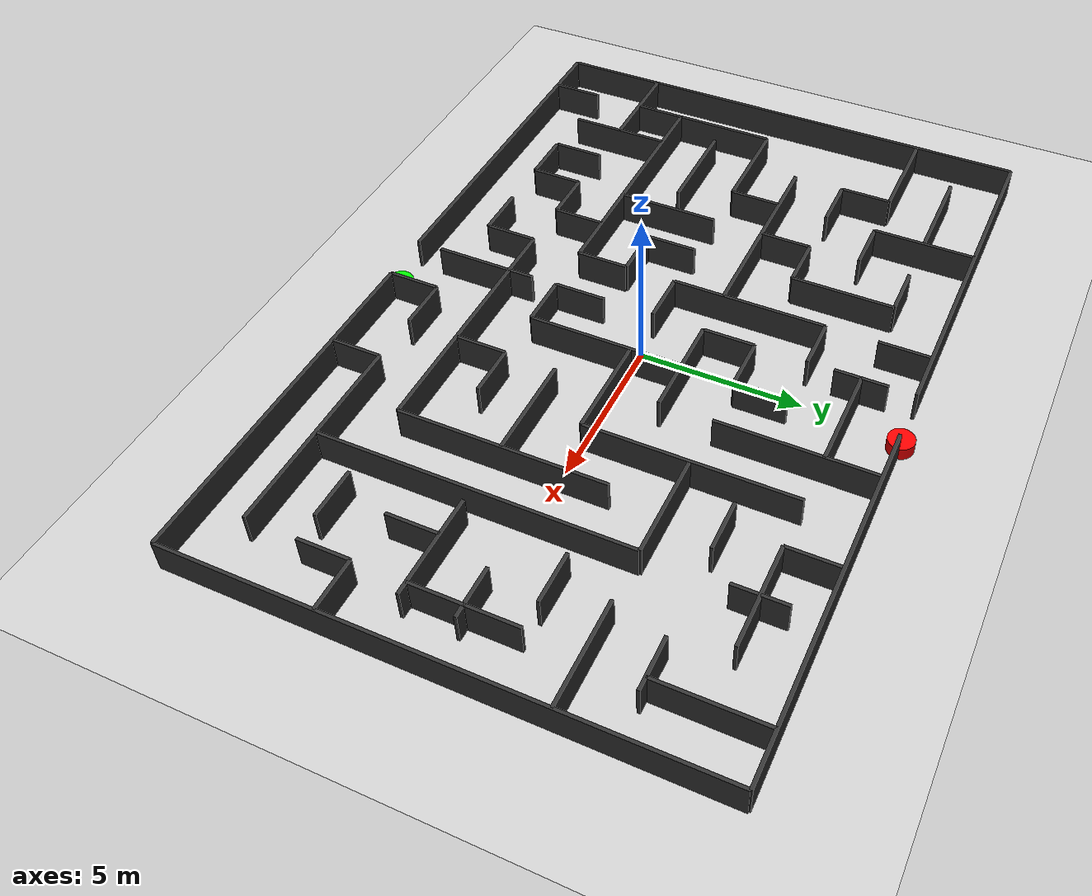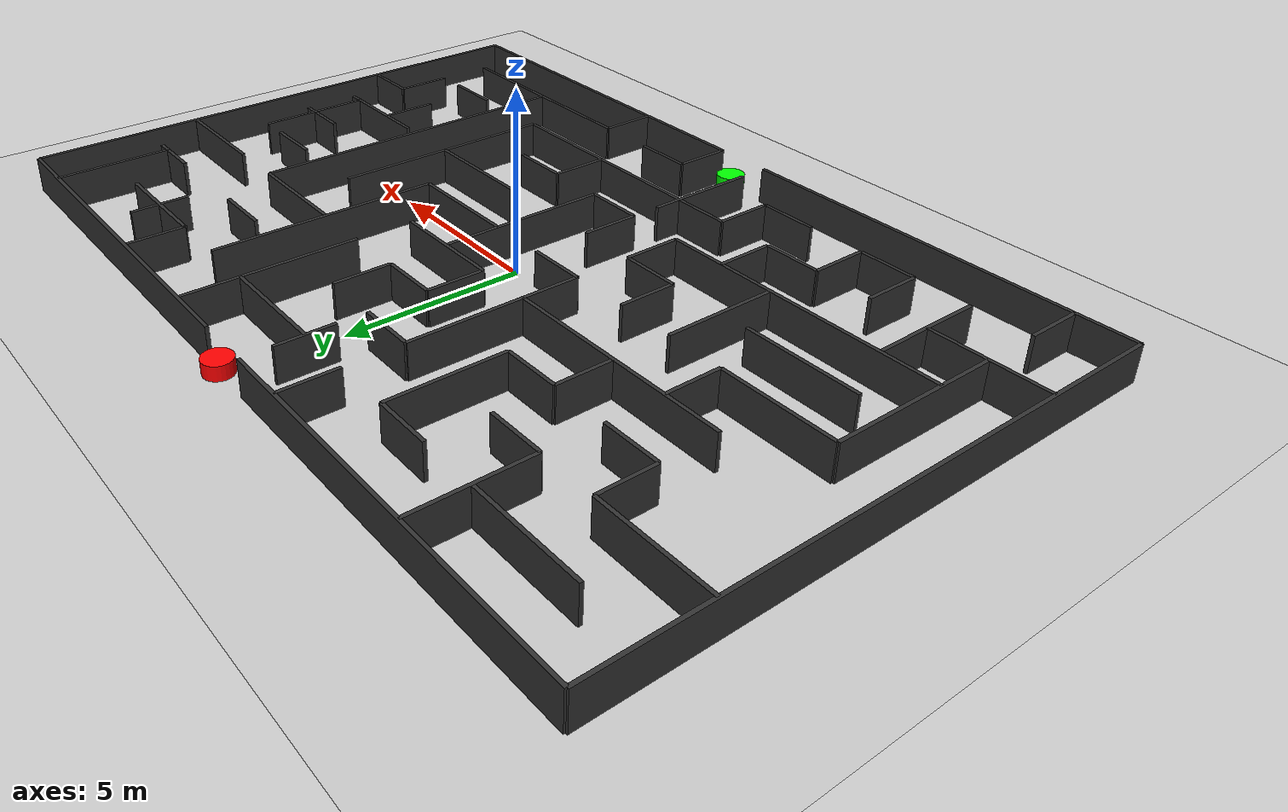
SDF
<?xml version="1.0" ?>
<sdf version="1.8">
    <world name="maze_world_15x10">
        <!-- Physics -->
        <physics name="1ms" type="ignored">
            <max_step_size>0.001</max_step_size>
            <real_time_factor>1.0</real_time_factor>
        </physics>

        <!-- Plugins -->
        <plugin filename="ignition-gazebo-physics-system" name="ignition::gazebo::systems::Physics">
        </plugin>
        <plugin filename="ignition-gazebo-user-commands-system" name="ignition::gazebo::systems::UserCommands">
        </plugin>
        <plugin filename="ignition-gazebo-scene-broadcaster-system" name="ignition::gazebo::systems::SceneBroadcaster">
        </plugin>
         <plugin filename="ignition-gazebo-sensors-system" name="ignition::gazebo::systems::Sensors">
            <render_engine>ogre</render_engine>
        </plugin>

        <!-- Lighting -->
        <light type="directional" name="sun">
            <cast_shadows>true</cast_shadows>
            <pose>0 0 10 0 0 0</pose>
            <diffuse>0.8 0.8 0.8 1</diffuse>
            <specular>0.2 0.2 0.2 1</specular>
            <attenuation>
                <range>1000</range>
                <constant>0.9</constant>
                <linear>0.01</linear>
                <quadratic>0.001</quadratic>
            </attenuation>
            <direction>-0.5 0.1 -0.9</direction>
        </light>

        <!-- Ground Plane -->
        <model name="ground_plane">
            <static>true</static>
            <link name="link">
                <collision name="collision">
                    <geometry>
                        <plane>
                            <normal>0 0 1</normal>
                        </plane>
                    </geometry>
                </collision>
                <visual name="visual">
                    <geometry>
                        <plane>
                            <normal>0 0 1</normal>
                            <size>50 50</size>
                        </plane>
                    </geometry>
                    <material>
                        <ambient>0.8 0.8 0.8 1</ambient>
                        <diffuse>0.8 0.8 0.8 1</diffuse>
                        <specular>0.8 0.8 0.8 1</specular>
                    </material>
                </visual>
            </link>
        </model>

        <!-- SVG: 244x164 (15 genişlik × 10 yükseklik) → Gazebo: 24.4m × 16.4m -->
        <!-- Merkez: SVG (122, 82) → Gazebo (0, 0) -->
        <!-- Ölçek: 1 SVG birimi = 0.1m -->

        <!-- HORIZONTAL WALLS (Yatay Duvarlar) -->

        <!-- Line 1: x1="2" y1="2" x2="114" y2="2" -->
        <model name="wall_h1">
            <static>true</static>
            <pose>-6.4 8 0.5 0 0 0</pose>
            <link name="link">
                <collision name="collision">
                    <geometry>
                        <box>
                            <size>11.2 0.1 1</size>
                        </box>
                    </geometry>
                </collision>
                <visual name="visual">
                    <geometry>
                        <box>
                            <size>11.2 0.1 1</size>
                        </box>
                    </geometry>
                    <material>
                        <ambient>0.2 0.2 0.2 1</ambient>
                        <diffuse>0.2 0.2 0.2 1</diffuse>
                    </material>
                </visual>
            </link>
        </model>

        <!-- Line 2: x1="130" y1="2" x2="242" y2="2" -->
        <model name="wall_h2">
            <static>true</static>
            <pose>6.4 8 0.5 0 0 0</pose>
            <link name="link">
                <collision name="collision">
                    <geometry>
                        <box>
                            <size>11.2 0.1 1</size>
                        </box>
                    </geometry>
                </collision>
                <visual name="visual">
                    <geometry>
                        <box>
                            <size>11.2 0.1 1</size>
                        </box>
                    </geometry>
                    <material>
                        <ambient>0.2 0.2 0.2 1</ambient>
                        <diffuse>0.2 0.2 0.2 1</diffuse>
                    </material>
                </visual>
            </link>
        </model>

        <!-- Line 3: x1="18" y1="18" x2="50" y2="18" -->
        <model name="wall_h3">
            <static>true</static>
            <pose>-8.8 6.4 0.5 0 0 0</pose>
            <link name="link">
                <collision name="collision">
                    <geometry>
                        <box>
                            <size>3.2 0.1 1</size>
                        </box>
                    </geometry>
                </collision>
                <visual name="visual">
                    <geometry>
                        <box>
                            <size>3.2 0.1 1</size>
                        </box>
                    </geometry>
                    <material>
                        <ambient>0.2 0.2 0.2 1</ambient>
                        <diffuse>0.2 0.2 0.2 1</diffuse>
                    </material>
                </visual>
            </link>
        </model>

        <!-- Line 4: x1="66" y1="18" x2="82" y2="18" -->
        <model name="wall_h4">
            <static>true</static>
            <pose>-4.8 6.4 0.5 0 0 0</pose>
            <link name="link">
                <collision name="collision">
                    <geometry>
                        <box>
                            <size>1.6 0.1 1</size>
                        </box>
                    </geometry>
                </collision>
                <visual name="visual">
                    <geometry>
                        <box>
                            <size>1.6 0.1 1</size>
                        </box>
                    </geometry>
                    <material>
                        <ambient>0.2 0.2 0.2 1</ambient>
                        <diffuse>0.2 0.2 0.2 1</diffuse>
                    </material>
                </visual>
            </link>
        </model>

        <!-- Line 5: x1="114" y1="18" x2="146" y2="18" -->
        <model name="wall_h5">
            <static>true</static>
            <pose>0.8 6.4 0.5 0 0 0</pose>
            <link name="link">
                <collision name="collision">
                    <geometry>
                        <box>
                            <size>3.2 0.1 1</size>
                        </box>
                    </geometry>
                </collision>
                <visual name="visual">
                    <geometry>
                        <box>
                            <size>3.2 0.1 1</size>
                        </box>
                    </geometry>
                    <material>
                        <ambient>0.2 0.2 0.2 1</ambient>
                        <diffuse>0.2 0.2 0.2 1</diffuse>
                    </material>
                </visual>
            </link>
        </model>

        <!-- Line 6: x1="178" y1="18" x2="210" y2="18" -->
        <model name="wall_h6">
            <static>true</static>
            <pose>7.2 6.4 0.5 0 0 0</pose>
            <link name="link">
                <collision name="collision">
                    <geometry>
                        <box>
                            <size>3.2 0.1 1</size>
                        </box>
                    </geometry>
                </collision>
                <visual name="visual">
                    <geometry>
                        <box>
                            <size>3.2 0.1 1</size>
                        </box>
                    </geometry>
                    <material>
                        <ambient>0.2 0.2 0.2 1</ambient>
                        <diffuse>0.2 0.2 0.2 1</diffuse>
                    </material>
                </visual>
            </link>
        </model>

        <!-- Line 7: x1="2" y1="34" x2="34" y2="34" -->
        <model name="wall_h7">
            <static>true</static>
            <pose>-10.4 4.8 0.5 0 0 0</pose>
            <link name="link">
                <collision name="collision">
                    <geometry>
                        <box>
                            <size>3.2 0.1 1</size>
                        </box>
                    </geometry>
                </collision>
                <visual name="visual">
                    <geometry>
                        <box>
                            <size>3.2 0.1 1</size>
                        </box>
                    </geometry>
                    <material>
                        <ambient>0.2 0.2 0.2 1</ambient>
                        <diffuse>0.2 0.2 0.2 1</diffuse>
                    </material>
                </visual>
            </link>
        </model>

        <!-- Line 8: x1="50" y1="34" x2="66" y2="34" -->
        <model name="wall_h8">
            <static>true</static>
            <pose>-6.4 4.8 0.5 0 0 0</pose>
            <link name="link">
                <collision name="collision">
                    <geometry>
                        <box>
                            <size>1.6 0.1 1</size>
                        </box>
                    </geometry>
                </collision>
                <visual name="visual">
                    <geometry>
                        <box>
                            <size>1.6 0.1 1</size>
                        </box>
                    </geometry>
                    <material>
                        <ambient>0.2 0.2 0.2 1</ambient>
                        <diffuse>0.2 0.2 0.2 1</diffuse>
                    </material>
                </visual>
            </link>
        </model>

        <!-- Line 9: x1="98" y1="34" x2="114" y2="34" -->
        <model name="wall_h9">
            <static>true</static>
            <pose>-1.6 4.8 0.5 0 0 0</pose>
            <link name="link">
                <collision name="collision">
                    <geometry>
                        <box>
                            <size>1.6 0.1 1</size>
                        </box>
                    </geometry>
                </collision>
                <visual name="visual">
                    <geometry>
                        <box>
                            <size>1.6 0.1 1</size>
                        </box>
                    </geometry>
                    <material>
                        <ambient>0.2 0.2 0.2 1</ambient>
                        <diffuse>0.2 0.2 0.2 1</diffuse>
                    </material>
                </visual>
            </link>
        </model>

        <!-- Line 10: x1="162" y1="34" x2="178" y2="34" -->
        <model name="wall_h10">
            <static>true</static>
            <pose>5.6 4.8 0.5 0 0 0</pose>
            <link name="link">
                <collision name="collision">
                    <geometry>
                        <box>
                            <size>1.6 0.1 1</size>
                        </box>
                    </geometry>
                </collision>
                <visual name="visual">
                    <geometry>
                        <box>
                            <size>1.6 0.1 1</size>
                        </box>
                    </geometry>
                    <material>
                        <ambient>0.2 0.2 0.2 1</ambient>
                        <diffuse>0.2 0.2 0.2 1</diffuse>
                    </material>
                </visual>
            </link>
        </model>

        <!-- Line 11: x1="210" y1="34" x2="226" y2="34" -->
        <model name="wall_h11">
            <static>true</static>
            <pose>10 4.8 0.5 0 0 0</pose>
            <link name="link">
                <collision name="collision">
                    <geometry>
                        <box>
                            <size>1.6 0.1 1</size>
                        </box>
                    </geometry>
                </collision>
                <visual name="visual">
                    <geometry>
                        <box>
                            <size>1.6 0.1 1</size>
                        </box>
                    </geometry>
                    <material>
                        <ambient>0.2 0.2 0.2 1</ambient>
                        <diffuse>0.2 0.2 0.2 1</diffuse>
                    </material>
                </visual>
            </link>
        </model>

        <!-- Line 12: x1="34" y1="50" x2="50" y2="50" -->
        <model name="wall_h12">
            <static>true</static>
            <pose>-8 3.2 0.5 0 0 0</pose>
            <link name="link">
                <collision name="collision">
                    <geometry>
                        <box>
                            <size>1.6 0.1 1</size>
                        </box>
                    </geometry>
                </collision>
                <visual name="visual">
                    <geometry>
                        <box>
                            <size>1.6 0.1 1</size>
                        </box>
                    </geometry>
                    <material>
                        <ambient>0.2 0.2 0.2 1</ambient>
                        <diffuse>0.2 0.2 0.2 1</diffuse>
                    </material>
                </visual>
            </link>
        </model>

        <!-- Line 13: x1="66" y1="50" x2="82" y2="50" -->
        <model name="wall_h13">
            <static>true</static>
            <pose>-4.8 3.2 0.5 0 0 0</pose>
            <link name="link">
                <collision name="collision">
                    <geometry>
                        <box>
                            <size>1.6 0.1 1</size>
                        </box>
                    </geometry>
                </collision>
                <visual name="visual">
                    <geometry>
                        <box>
                            <size>1.6 0.1 1</size>
                        </box>
                    </geometry>
                    <material>
                        <ambient>0.2 0.2 0.2 1</ambient>
                        <diffuse>0.2 0.2 0.2 1</diffuse>
                    </material>
                </visual>
            </link>
        </model>

        <!-- Line 14: x1="114" y1="50" x2="130" y2="50" -->
        <model name="wall_h14">
            <static>true</static>
            <pose>0 3.2 0.5 0 0 0</pose>
            <link name="link">
                <collision name="collision">
                    <geometry>
                        <box>
                            <size>1.6 0.1 1</size>
                        </box>
                    </geometry>
                </collision>
                <visual name="visual">
                    <geometry>
                        <box>
                            <size>1.6 0.1 1</size>
                        </box>
                    </geometry>
                    <material>
                        <ambient>0.2 0.2 0.2 1</ambient>
                        <diffuse>0.2 0.2 0.2 1</diffuse>
                    </material>
                </visual>
            </link>
        </model>

        <!-- Line 15: x1="162" y1="50" x2="194" y2="50" -->
        <model name="wall_h15">
            <static>true</static>
            <pose>5.6 3.2 0.5 0 0 0</pose>
            <link name="link">
                <collision name="collision">
                    <geometry>
                        <box>
                            <size>3.2 0.1 1</size>
                        </box>
                    </geometry>
                </collision>
                <visual name="visual">
                    <geometry>
                        <box>
                            <size>3.2 0.1 1</size>
                        </box>
                    </geometry>
                    <material>
                        <ambient>0.2 0.2 0.2 1</ambient>
                        <diffuse>0.2 0.2 0.2 1</diffuse>
                    </material>
                </visual>
            </link>
        </model>

        <!-- Line 16: x1="210" y1="50" x2="242" y2="50" -->
        <model name="wall_h16">
            <static>true</static>
            <pose>10.4 3.2 0.5 0 0 0</pose>
            <link name="link">
                <collision name="collision">
                    <geometry>
                        <box>
                            <size>3.2 0.1 1</size>
                        </box>
                    </geometry>
                </collision>
                <visual name="visual">
                    <geometry>
                        <box>
                            <size>3.2 0.1 1</size>
                        </box>
                    </geometry>
                    <material>
                        <ambient>0.2 0.2 0.2 1</ambient>
                        <diffuse>0.2 0.2 0.2 1</diffuse>
                    </material>
                </visual>
            </link>
        </model>

        <!-- Line 17: x1="34" y1="66" x2="98" y2="66" -->
        <model name="wall_h17">
            <static>true</static>
            <pose>-5.6 1.6 0.5 0 0 0</pose>
            <link name="link">
                <collision name="collision">
                    <geometry>
                        <box>
                            <size>6.4 0.1 1</size>
                        </box>
                    </geometry>
                </collision>
                <visual name="visual">
                    <geometry>
                        <box>
                            <size>6.4 0.1 1</size>
                        </box>
                    </geometry>
                    <material>
                        <ambient>0.2 0.2 0.2 1</ambient>
                        <diffuse>0.2 0.2 0.2 1</diffuse>
                    </material>
                </visual>
            </link>
        </model>

        <!-- Line 18: x1="114" y1="66" x2="146" y2="66" -->
        <model name="wall_h18">
            <static>true</static>
            <pose>0.8 1.6 0.5 0 0 0</pose>
            <link name="link">
                <collision name="collision">
                    <geometry>
                        <box>
                            <size>3.2 0.1 1</size>
                        </box>
                    </geometry>
                </collision>
                <visual name="visual">
                    <geometry>
                        <box>
                            <size>3.2 0.1 1</size>
                        </box>
                    </geometry>
                    <material>
                        <ambient>0.2 0.2 0.2 1</ambient>
                        <diffuse>0.2 0.2 0.2 1</diffuse>
                    </material>
                </visual>
            </link>
        </model>

        <!-- Line 19: x1="194" y1="66" x2="210" y2="66" -->
        <model name="wall_h19">
            <static>true</static>
            <pose>8.8 1.6 0.5 0 0 0</pose>
            <link name="link">
                <collision name="collision">
                    <geometry>
                        <box>
                            <size>1.6 0.1 1</size>
                        </box>
                    </geometry>
                </collision>
                <visual name="visual">
                    <geometry>
                        <box>
                            <size>1.6 0.1 1</size>
                        </box>
                    </geometry>
                    <material>
                        <ambient>0.2 0.2 0.2 1</ambient>
                        <diffuse>0.2 0.2 0.2 1</diffuse>
                    </material>
                </visual>
            </link>
        </model>

        <!-- Line 20: x1="18" y1="82" x2="50" y2="82" -->
        <model name="wall_h20">
            <static>true</static>
            <pose>-8.8 0 0.5 0 0 0</pose>
            <link name="link">
                <collision name="collision">
                    <geometry>
                        <box>
                            <size>3.2 0.1 1</size>
                        </box>
                    </geometry>
                </collision>
                <visual name="visual">
                    <geometry>
                        <box>
                            <size>3.2 0.1 1</size>
                        </box>
                    </geometry>
                    <material>
                        <ambient>0.2 0.2 0.2 1</ambient>
                        <diffuse>0.2 0.2 0.2 1</diffuse>
                    </material>
                </visual>
            </link>
        </model>

        <!-- Line 21: x1="98" y1="82" x2="114" y2="82" -->
        <model name="wall_h21">
            <static>true</static>
            <pose>-1.6 0 0.5 0 0 0</pose>
            <link name="link">
                <collision name="collision">
                    <geometry>
                        <box>
                            <size>1.6 0.1 1</size>
                        </box>
                    </geometry>
                </collision>
                <visual name="visual">
                    <geometry>
                        <box>
                            <size>1.6 0.1 1</size>
                        </box>
                    </geometry>
                    <material>
                        <ambient>0.2 0.2 0.2 1</ambient>
                        <diffuse>0.2 0.2 0.2 1</diffuse>
                    </material>
                </visual>
            </link>
        </model>

        <!-- Line 22: x1="130" y1="82" x2="162" y2="82" -->
        <model name="wall_h22">
            <static>true</static>
            <pose>2.4 0 0.5 0 0 0</pose>
            <link name="link">
                <collision name="collision">
                    <geometry>
                        <box>
                            <size>3.2 0.1 1</size>
                        </box>
                    </geometry>
                </collision>
                <visual name="visual">
                    <geometry>
                        <box>
                            <size>3.2 0.1 1</size>
                        </box>
                    </geometry>
                    <material>
                        <ambient>0.2 0.2 0.2 1</ambient>
                        <diffuse>0.2 0.2 0.2 1</diffuse>
                    </material>
                </visual>
            </link>
        </model>

        <!-- Line 23: x1="210" y1="82" x2="226" y2="82" -->
        <model name="wall_h23">
            <static>true</static>
            <pose>10 0 0.5 0 0 0</pose>
            <link name="link">
                <collision name="collision">
                    <geometry>
                        <box>
                            <size>1.6 0.1 1</size>
                        </box>
                    </geometry>
                </collision>
                <visual name="visual">
                    <geometry>
                        <box>
                            <size>1.6 0.1 1</size>
                        </box>
                    </geometry>
                    <material>
                        <ambient>0.2 0.2 0.2 1</ambient>
                        <diffuse>0.2 0.2 0.2 1</diffuse>
                    </material>
                </visual>
            </link>
        </model>

        <!-- Line 24: x1="34" y1="98" x2="66" y2="98" -->
        <model name="wall_h24">
            <static>true</static>
            <pose>-8 -1.6 0.5 0 0 0</pose>
            <link name="link">
                <collision name="collision">
                    <geometry>
                        <box>
                            <size>3.2 0.1 1</size>
                        </box>
                    </geometry>
                </collision>
                <visual name="visual">
                    <geometry>
                        <box>
                            <size>3.2 0.1 1</size>
                        </box>
                    </geometry>
                    <material>
                        <ambient>0.2 0.2 0.2 1</ambient>
                        <diffuse>0.2 0.2 0.2 1</diffuse>
                    </material>
                </visual>
            </link>
        </model>

        <!-- Line 25: x1="82" y1="98" x2="98" y2="98" -->
        <model name="wall_h25">
            <static>true</static>
            <pose>-3.2 -1.6 0.5 0 0 0</pose>
            <link name="link">
                <collision name="collision">
                    <geometry>
                        <box>
                            <size>1.6 0.1 1</size>
                        </box>
                    </geometry>
                </collision>
                <visual name="visual">
                    <geometry>
                        <box>
                            <size>1.6 0.1 1</size>
                        </box>
                    </geometry>
                    <material>
                        <ambient>0.2 0.2 0.2 1</ambient>
                        <diffuse>0.2 0.2 0.2 1</diffuse>
                    </material>
                </visual>
            </link>
        </model>

        <!-- Line 26: x1="146" y1="98" x2="178" y2="98" -->
        <model name="wall_h26">
            <static>true</static>
            <pose>4 -1.6 0.5 0 0 0</pose>
            <link name="link">
                <collision name="collision">
                    <geometry>
                        <box>
                            <size>3.2 0.1 1</size>
                        </box>
                    </geometry>
                </collision>
                <visual name="visual">
                    <geometry>
                        <box>
                            <size>3.2 0.1 1</size>
                        </box>
                    </geometry>
                    <material>
                        <ambient>0.2 0.2 0.2 1</ambient>
                        <diffuse>0.2 0.2 0.2 1</diffuse>
                    </material>
                </visual>
            </link>
        </model>

        <!-- Line 27: x1="194" y1="98" x2="226" y2="98" -->
        <model name="wall_h27">
            <static>true</static>
            <pose>9.2 -1.6 0.5 0 0 0</pose>
            <link name="link">
                <collision name="collision">
                    <geometry>
                        <box>
                            <size>3.2 0.1 1</size>
                        </box>
                    </geometry>
                </collision>
                <visual name="visual">
                    <geometry>
                        <box>
                            <size>3.2 0.1 1</size>
                        </box>
                    </geometry>
                    <material>
                        <ambient>0.2 0.2 0.2 1</ambient>
                        <diffuse>0.2 0.2 0.2 1</diffuse>
                    </material>
                </visual>
            </link>
        </model>

        <!-- Line 28: x1="18" y1="114" x2="98" y2="114" -->
        <model name="wall_h28">
            <static>true</static>
            <pose>-6.4 -3.2 0.5 0 0 0</pose>
            <link name="link">
                <collision name="collision">
                    <geometry>
                        <box>
                            <size>8 0.1 1</size>
                        </box>
                    </geometry>
                </collision>
                <visual name="visual">
                    <geometry>
                        <box>
                            <size>8 0.1 1</size>
                        </box>
                    </geometry>
                    <material>
                        <ambient>0.2 0.2 0.2 1</ambient>
                        <diffuse>0.2 0.2 0.2 1</diffuse>
                    </material>
                </visual>
            </link>
        </model>

        <!-- Line 29: x1="114" y1="114" x2="130" y2="114" -->
        <model name="wall_h29">
            <static>true</static>
            <pose>0 -3.2 0.5 0 0 0</pose>
            <link name="link">
                <collision name="collision">
                    <geometry>
                        <box>
                            <size>1.6 0.1 1</size>
                        </box>
                    </geometry>
                </collision>
                <visual name="visual">
                    <geometry>
                        <box>
                            <size>1.6 0.1 1</size>
                        </box>
                    </geometry>
                    <material>
                        <ambient>0.2 0.2 0.2 1</ambient>
                        <diffuse>0.2 0.2 0.2 1</diffuse>
                    </material>
                </visual>
            </link>
        </model>

        <!-- Line 30: x1="146" y1="114" x2="162" y2="114" -->
        <model name="wall_h30">
            <static>true</static>
            <pose>3.2 -3.2 0.5 0 0 0</pose>
            <link name="link">
                <collision name="collision">
                    <geometry>
                        <box>
                            <size>1.6 0.1 1</size>
                        </box>
                    </geometry>
                </collision>
                <visual name="visual">
                    <geometry>
                        <box>
                            <size>1.6 0.1 1</size>
                        </box>
                    </geometry>
                    <material>
                        <ambient>0.2 0.2 0.2 1</ambient>
                        <diffuse>0.2 0.2 0.2 1</diffuse>
                    </material>
                </visual>
            </link>
        </model>

        <!-- Line 31: x1="226" y1="114" x2="242" y2="114" -->
        <model name="wall_h31">
            <static>true</static>
            <pose>11.2 -3.2 0.5 0 0 0</pose>
            <link name="link">
                <collision name="collision">
                    <geometry>
                        <box>
                            <size>1.6 0.1 1</size>
                        </box>
                    </geometry>
                </collision>
                <visual name="visual">
                    <geometry>
                        <box>
                            <size>1.6 0.1 1</size>
                        </box>
                    </geometry>
                    <material>
                        <ambient>0.2 0.2 0.2 1</ambient>
                        <diffuse>0.2 0.2 0.2 1</diffuse>
                    </material>
                </visual>
            </link>
        </model>

        <!-- Line 32: x1="2" y1="130" x2="34" y2="130" -->
        <model name="wall_h32">
            <static>true</static>
            <pose>-10.4 -4.8 0.5 0 0 0</pose>
            <link name="link">
                <collision name="collision">
                    <geometry>
                        <box>
                            <size>3.2 0.1 1</size>
                        </box>
                    </geometry>
                </collision>
                <visual name="visual">
                    <geometry>
                        <box>
                            <size>3.2 0.1 1</size>
                        </box>
                    </geometry>
                    <material>
                        <ambient>0.2 0.2 0.2 1</ambient>
                        <diffuse>0.2 0.2 0.2 1</diffuse>
                    </material>
                </visual>
            </link>
        </model>

        <!-- Line 33: x1="66" y1="130" x2="82" y2="130" -->
        <model name="wall_h33">
            <static>true</static>
            <pose>-4.8 -4.8 0.5 0 0 0</pose>
            <link name="link">
                <collision name="collision">
                    <geometry>
                        <box>
                            <size>1.6 0.1 1</size>
                        </box>
                    </geometry>
                </collision>
                <visual name="visual">
                    <geometry>
                        <box>
                            <size>1.6 0.1 1</size>
                        </box>
                    </geometry>
                    <material>
                        <ambient>0.2 0.2 0.2 1</ambient>
                        <diffuse>0.2 0.2 0.2 1</diffuse>
                    </material>
                </visual>
            </link>
        </model>

        <!-- Line 34: x1="98" y1="130" x2="178" y2="130" -->
        <model name="wall_h34">
            <static>true</static>
            <pose>1.6 -4.8 0.5 0 0 0</pose>
            <link name="link">
                <collision name="collision">
                    <geometry>
                        <box>
                            <size>8 0.1 1</size>
                        </box>
                    </geometry>
                </collision>
                <visual name="visual">
                    <geometry>
                        <box>
                            <size>8 0.1 1</size>
                        </box>
                    </geometry>
                    <material>
                        <ambient>0.2 0.2 0.2 1</ambient>
                        <diffuse>0.2 0.2 0.2 1</diffuse>
                    </material>
                </visual>
            </link>
        </model>

        <!-- Line 35: x1="194" y1="130" x2="210" y2="130" -->
        <model name="wall_h35">
            <static>true</static>
            <pose>8.8 -4.8 0.5 0 0 0</pose>
            <link name="link">
                <collision name="collision">
                    <geometry>
                        <box>
                            <size>1.6 0.1 1</size>
                        </box>
                    </geometry>
                </collision>
                <visual name="visual">
                    <geometry>
                        <box>
                            <size>1.6 0.1 1</size>
                        </box>
                    </geometry>
                    <material>
                        <ambient>0.2 0.2 0.2 1</ambient>
                        <diffuse>0.2 0.2 0.2 1</diffuse>
                    </material>
                </visual>
            </link>
        </model>

        <!-- Line 36: x1="50" y1="146" x2="66" y2="146" -->
        <model name="wall_h36">
            <static>true</static>
            <pose>-6.4 -6.4 0.5 0 0 0</pose>
            <link name="link">
                <collision name="collision">
                    <geometry>
                        <box>
                            <size>1.6 0.1 1</size>
                        </box>
                    </geometry>
                </collision>
                <visual name="visual">
                    <geometry>
                        <box>
                            <size>1.6 0.1 1</size>
                        </box>
                    </geometry>
                    <material>
                        <ambient>0.2 0.2 0.2 1</ambient>
                        <diffuse>0.2 0.2 0.2 1</diffuse>
                    </material>
                </visual>
            </link>
        </model>

        <!-- Line 37: x1="82" y1="146" x2="98" y2="146" -->
        <model name="wall_h37">
            <static>true</static>
            <pose>-3.2 -6.4 0.5 0 0 0</pose>
            <link name="link">
                <collision name="collision">
                    <geometry>
                        <box>
                            <size>1.6 0.1 1</size>
                        </box>
                    </geometry>
                </collision>
                <visual name="visual">
                    <geometry>
                        <box>
                            <size>1.6 0.1 1</size>
                        </box>
                    </geometry>
                    <material>
                        <ambient>0.2 0.2 0.2 1</ambient>
                        <diffuse>0.2 0.2 0.2 1</diffuse>
                    </material>
                </visual>
            </link>
        </model>

        <!-- Line 38: x1="130" y1="146" x2="146" y2="146" -->
        <model name="wall_h38">
            <static>true</static>
            <pose>1.6 -6.4 0.5 0 0 0</pose>
            <link name="link">
                <collision name="collision">
                    <geometry>
                        <box>
                            <size>1.6 0.1 1</size>
                        </box>
                    </geometry>
                </collision>
                <visual name="visual">
                    <geometry>
                        <box>
                            <size>1.6 0.1 1</size>
                        </box>
                    </geometry>
                    <material>
                        <ambient>0.2 0.2 0.2 1</ambient>
                        <diffuse>0.2 0.2 0.2 1</diffuse>
                    </material>
                </visual>
            </link>
        </model>

        <!-- Line 39: x1="162" y1="146" x2="226" y2="146" -->
        <model name="wall_h39">
            <static>true</static>
            <pose>7.2 -6.4 0.5 0 0 0</pose>
            <link name="link">
                <collision name="collision">
                    <geometry>
                        <box>
                            <size>6.4 0.1 1</size>
                        </box>
                    </geometry>
                </collision>
                <visual name="visual">
                    <geometry>
                        <box>
                            <size>6.4 0.1 1</size>
                        </box>
                    </geometry>
                    <material>
                        <ambient>0.2 0.2 0.2 1</ambient>
                        <diffuse>0.2 0.2 0.2 1</diffuse>
                    </material>
                </visual>
            </link>
        </model>

        <!-- Line 40: x1="2" y1="162" x2="114" y2="162" -->
        <model name="wall_h40">
            <static>true</static>
            <pose>-6.4 -8 0.5 0 0 0</pose>
            <link name="link">
                <collision name="collision">
                    <geometry>
                        <box>
                            <size>11.2 0.1 1</size>
                        </box>
                    </geometry>
                </collision>
                <visual name="visual">
                    <geometry>
                        <box>
                            <size>11.2 0.1 1</size>
                        </box>
                    </geometry>
                    <material>
                        <ambient>0.2 0.2 0.2 1</ambient>
                        <diffuse>0.2 0.2 0.2 1</diffuse>
                    </material>
                </visual>
            </link>
        </model>

        <!-- Line 41: x1="130" y1="162" x2="242" y2="162" -->
        <model name="wall_h41">
            <static>true</static>
            <pose>6.4 -8 0.5 0 0 0</pose>
            <link name="link">
                <collision name="collision">
                    <geometry>
                        <box>
                            <size>11.2 0.1 1</size>
                        </box>
                    </geometry>
                </collision>
                <visual name="visual">
                    <geometry>
                        <box>
                            <size>11.2 0.1 1</size>
                        </box>
                    </geometry>
                    <material>
                        <ambient>0.2 0.2 0.2 1</ambient>
                        <diffuse>0.2 0.2 0.2 1</diffuse>
                    </material>
                </visual>
            </link>
        </model>

        <!-- VERTICAL WALLS (Dikey Duvarlar) -->

        <!-- Line 42: x1="2" y1="2" x2="2" y2="162" -->
        <model name="wall_v1">
            <static>true</static>
            <pose>-12 0 0.5 0 0 0</pose>
            <link name="link">
                <collision name="collision">
                    <geometry>
                        <box>
                            <size>0.1 16 1</size>
                        </box>
                    </geometry>
                </collision>
                <visual name="visual">
                    <geometry>
                        <box>
                            <size>0.1 16 1</size>
                        </box>
                    </geometry>
                    <material>
                        <ambient>0.2 0.2 0.2 1</ambient>
                        <diffuse>0.2 0.2 0.2 1</diffuse>
                    </material>
                </visual>
            </link>
        </model>

        <!-- Line 43: x1="18" y1="50" x2="18" y2="98" -->
        <model name="wall_v2">
            <static>true</static>
            <pose>-10.4 -2.4 0.5 0 0 0</pose>
            <link name="link">
                <collision name="collision">
                    <geometry>
                        <box>
                            <size>0.1 4.8 1</size>
                        </box>
                    </geometry>
                </collision>
                <visual name="visual">
                    <geometry>
                        <box>
                            <size>0.1 4.8 1</size>
                        </box>
                    </geometry>
                    <material>
                        <ambient>0.2 0.2 0.2 1</ambient>
                        <diffuse>0.2 0.2 0.2 1</diffuse>
                    </material>
                </visual>
            </link>
        </model>

        <!-- Line 44: x1="18" y1="146" x2="18" y2="162" -->
        <model name="wall_v3">
            <static>true</static>
            <pose>-10.4 -7.2 0.5 0 0 0</pose>
            <link name="link">
                <collision name="collision">
                    <geometry>
                        <box>
                            <size>0.1 1.6 1</size>
                        </box>
                    </geometry>
                </collision>
                <visual name="visual">
                    <geometry>
                        <box>
                            <size>0.1 1.6 1</size>
                        </box>
                    </geometry>
                    <material>
                        <ambient>0.2 0.2 0.2 1</ambient>
                        <diffuse>0.2 0.2 0.2 1</diffuse>
                    </material>
                </visual>
            </link>
        </model>

        <!-- Line 45: x1="34" y1="34" x2="34" y2="50" -->
        <model name="wall_v4">
            <static>true</static>
            <pose>-8.8 4 0.5 0 0 0</pose>
            <link name="link">
                <collision name="collision">
                    <geometry>
                        <box>
                            <size>0.1 1.6 1</size>
                        </box>
                    </geometry>
                </collision>
                <visual name="visual">
                    <geometry>
                        <box>
                            <size>0.1 1.6 1</size>
                        </box>
                    </geometry>
                    <material>
                        <ambient>0.2 0.2 0.2 1</ambient>
                        <diffuse>0.2 0.2 0.2 1</diffuse>
                    </material>
                </visual>
            </link>
        </model>

        <!-- Line 46: x1="34" y1="114" x2="34" y2="146" -->
        <model name="wall_v5">
            <static>true</static>
            <pose>-8.8 -4.8 0.5 0 0 0</pose>
            <link name="link">
                <collision name="collision">
                    <geometry>
                        <box>
                            <size>0.1 3.2 1</size>
                        </box>
                    </geometry>
                </collision>
                <visual name="visual">
                    <geometry>
                        <box>
                            <size>0.1 3.2 1</size>
                        </box>
                    </geometry>
                    <material>
                        <ambient>0.2 0.2 0.2 1</ambient>
                        <diffuse>0.2 0.2 0.2 1</diffuse>
                    </material>
                </visual>
            </link>
        </model>

        <!-- Line 47: x1="50" y1="2" x2="50" y2="34" -->
        <model name="wall_v6">
            <static>true</static>
            <pose>-7.2 6.4 0.5 0 0 0</pose>
            <link name="link">
                <collision name="collision">
                    <geometry>
                        <box>
                            <size>0.1 3.2 1</size>
                        </box>
                    </geometry>
                </collision>
                <visual name="visual">
                    <geometry>
                        <box>
                            <size>0.1 3.2 1</size>
                        </box>
                    </geometry>
                    <material>
                        <ambient>0.2 0.2 0.2 1</ambient>
                        <diffuse>0.2 0.2 0.2 1</diffuse>
                    </material>
                </visual>
            </link>
        </model>

        <!-- Line 48: x1="50" y1="66" x2="50" y2="82" -->
        <model name="wall_v7">
            <static>true</static>
            <pose>-7.2 0.8 0.5 0 0 0</pose>
            <link name="link">
                <collision name="collision">
                    <geometry>
                        <box>
                            <size>0.1 1.6 1</size>
                        </box>
                    </geometry>
                </collision>
                <visual name="visual">
                    <geometry>
                        <box>
                            <size>0.1 1.6 1</size>
                        </box>
                    </geometry>
                    <material>
                        <ambient>0.2 0.2 0.2 1</ambient>
                        <diffuse>0.2 0.2 0.2 1</diffuse>
                    </material>
                </visual>
            </link>
        </model>

        <!-- Line 49: x1="50" y1="130" x2="50" y2="146" -->
        <model name="wall_v8">
            <static>true</static>
            <pose>-7.2 -5.6 0.5 0 0 0</pose>
            <link name="link">
                <collision name="collision">
                    <geometry>
                        <box>
                            <size>0.1 1.6 1</size>
                        </box>
                    </geometry>
                </collision>
                <visual name="visual">
                    <geometry>
                        <box>
                            <size>0.1 1.6 1</size>
                        </box>
                    </geometry>
                    <material>
                        <ambient>0.2 0.2 0.2 1</ambient>
                        <diffuse>0.2 0.2 0.2 1</diffuse>
                    </material>
                </visual>
            </link>
        </model>

        <!-- Line 50: x1="66" y1="50" x2="66" y2="66" -->
        <model name="wall_v9">
            <static>true</static>
            <pose>-5.6 2.4 0.5 0 0 0</pose>
            <link name="link">
                <collision name="collision">
                    <geometry>
                        <box>
                            <size>0.1 1.6 1</size>
                        </box>
                    </geometry>
                </collision>
                <visual name="visual">
                    <geometry>
                        <box>
                            <size>0.1 1.6 1</size>
                        </box>
                    </geometry>
                    <material>
                        <ambient>0.2 0.2 0.2 1</ambient>
                        <diffuse>0.2 0.2 0.2 1</diffuse>
                    </material>
                </visual>
            </link>
        </model>

        <!-- Line 51: x1="66" y1="82" x2="66" y2="114" -->
        <model name="wall_v10">
            <static>true</static>
            <pose>-5.6 -1.6 0.5 0 0 0</pose>
            <link name="link">
                <collision name="collision">
                    <geometry>
                        <box>
                            <size>0.1 3.2 1</size>
                        </box>
                    </geometry>
                </collision>
                <visual name="visual">
                    <geometry>
                        <box>
                            <size>0.1 3.2 1</size>
                        </box>
                    </geometry>
                    <material>
                        <ambient>0.2 0.2 0.2 1</ambient>
                        <diffuse>0.2 0.2 0.2 1</diffuse>
                    </material>
                </visual>
            </link>
        </model>

        <!-- Line 52: x1="66" y1="130" x2="66" y2="146" -->
        <model name="wall_v11">
            <static>true</static>
            <pose>-5.6 -5.6 0.5 0 0 0</pose>
            <link name="link">
                <collision name="collision">
                    <geometry>
                        <box>
                            <size>0.1 1.6 1</size>
                        </box>
                    </geometry>
                </collision>
                <visual name="visual">
                    <geometry>
                        <box>
                            <size>0.1 1.6 1</size>
                        </box>
                    </geometry>
                    <material>
                        <ambient>0.2 0.2 0.2 1</ambient>
                        <diffuse>0.2 0.2 0.2 1</diffuse>
                    </material>
                </visual>
            </link>
        </model>

        <!-- Line 53: x1="82" y1="18" x2="82" y2="50" -->
        <model name="wall_v12">
            <static>true</static>
            <pose>-4 4.8 0.5 0 0 0</pose>
            <link name="link">
                <collision name="collision">
                    <geometry>
                        <box>
                            <size>0.1 3.2 1</size>
                        </box>
                    </geometry>
                </collision>
                <visual name="visual">
                    <geometry>
                        <box>
                            <size>0.1 3.2 1</size>
                        </box>
                    </geometry>
                    <material>
                        <ambient>0.2 0.2 0.2 1</ambient>
                        <diffuse>0.2 0.2 0.2 1</diffuse>
                    </material>
                </visual>
            </link>
        </model>

        <!-- Line 54: x1="82" y1="82" x2="82" y2="98" -->
        <model name="wall_v13">
            <static>true</static>
            <pose>-4 -0.8 0.5 0 0 0</pose>
            <link name="link">
                <collision name="collision">
                    <geometry>
                        <box>
                            <size>0.1 1.6 1</size>
                        </box>
                    </geometry>
                </collision>
                <visual name="visual">
                    <geometry>
                        <box>
                            <size>0.1 1.6 1</size>
                        </box>
                    </geometry>
                    <material>
                        <ambient>0.2 0.2 0.2 1</ambient>
                        <diffuse>0.2 0.2 0.2 1</diffuse>
                    </material>
                </visual>
            </link>
        </model>

        <!-- Line 55: x1="82" y1="114" x2="82" y2="130" -->
        <model name="wall_v14">
            <static>true</static>
            <pose>-4 -4 0.5 0 0 0</pose>
            <link name="link">
                <collision name="collision">
                    <geometry>
                        <box>
                            <size>0.1 1.6 1</size>
                        </box>
                    </geometry>
                </collision>
                <visual name="visual">
                    <geometry>
                        <box>
                            <size>0.1 1.6 1</size>
                        </box>
                    </geometry>
                    <material>
                        <ambient>0.2 0.2 0.2 1</ambient>
                        <diffuse>0.2 0.2 0.2 1</diffuse>
                    </material>
                </visual>
            </link>
        </model>

        <!-- Line 56: x1="98" y1="2" x2="98" y2="18" -->
        <model name="wall_v15">
            <static>true</static>
            <pose>-2.4 7.2 0.5 0 0 0</pose>
            <link name="link">
                <collision name="collision">
                    <geometry>
                        <box>
                            <size>0.1 1.6 1</size>
                        </box>
                    </geometry>
                </collision>
                <visual name="visual">
                    <geometry>
                        <box>
                            <size>0.1 1.6 1</size>
                        </box>
                    </geometry>
                    <material>
                        <ambient>0.2 0.2 0.2 1</ambient>
                        <diffuse>0.2 0.2 0.2 1</diffuse>
                    </material>
                </visual>
            </link>
        </model>

        <!-- Line 57: x1="98" y1="34" x2="98" y2="82" -->
        <model name="wall_v16">
            <static>true</static>
            <pose>-2.4 2.4 0.5 0 0 0</pose>
            <link name="link">
                <collision name="collision">
                    <geometry>
                        <box>
                            <size>0.1 4.8 1</size>
                        </box>
                    </geometry>
                </collision>
                <visual name="visual">
                    <geometry>
                        <box>
                            <size>0.1 4.8 1</size>
                        </box>
                    </geometry>
                    <material>
                        <ambient>0.2 0.2 0.2 1</ambient>
                        <diffuse>0.2 0.2 0.2 1</diffuse>
                    </material>
                </visual>
            </link>
        </model>

        <!-- Line 58: x1="98" y1="98" x2="98" y2="114" -->
        <model name="wall_v17">
            <static>true</static>
            <pose>-2.4 -2.4 0.5 0 0 0</pose>
            <link name="link">
                <collision name="collision">
                    <geometry>
                        <box>
                            <size>0.1 1.6 1</size>
                        </box>
                    </geometry>
                </collision>
                <visual name="visual">
                    <geometry>
                        <box>
                            <size>0.1 1.6 1</size>
                        </box>
                    </geometry>
                    <material>
                        <ambient>0.2 0.2 0.2 1</ambient>
                        <diffuse>0.2 0.2 0.2 1</diffuse>
                    </material>
                </visual>
            </link>
        </model>

        <!-- Line 59: x1="98" y1="130" x2="98" y2="146" -->
        <model name="wall_v18">
            <static>true</static>
            <pose>-2.4 -5.6 0.5 0 0 0</pose>
            <link name="link">
                <collision name="collision">
                    <geometry>
                        <box>
                            <size>0.1 1.6 1</size>
                        </box>
                    </geometry>
                </collision>
                <visual name="visual">
                    <geometry>
                        <box>
                            <size>0.1 1.6 1</size>
                        </box>
                    </geometry>
                    <material>
                        <ambient>0.2 0.2 0.2 1</ambient>
                        <diffuse>0.2 0.2 0.2 1</diffuse>
                    </material>
                </visual>
            </link>
        </model>

        <!-- Line 60: x1="114" y1="18" x2="114" y2="34" -->
        <model name="wall_v19">
            <static>true</static>
            <pose>-0.8 6.4 0.5 0 0 0</pose>
            <link name="link">
                <collision name="collision">
                    <geometry>
                        <box>
                            <size>0.1 1.6 1</size>
                        </box>
                    </geometry>
                </collision>
                <visual name="visual">
                    <geometry>
                        <box>
                            <size>0.1 1.6 1</size>
                        </box>
                    </geometry>
                    <material>
                        <ambient>0.2 0.2 0.2 1</ambient>
                        <diffuse>0.2 0.2 0.2 1</diffuse>
                    </material>
                </visual>
            </link>
        </model>

        <!-- Line 61: x1="114" y1="50" x2="114" y2="66" -->
        <model name="wall_v20">
            <static>true</static>
            <pose>-0.8 2.4 0.5 0 0 0</pose>
            <link name="link">
                <collision name="collision">
                    <geometry>
                        <box>
                            <size>0.1 1.6 1</size>
                        </box>
                    </geometry>
                </collision>
                <visual name="visual">
                    <geometry>
                        <box>
                            <size>0.1 1.6 1</size>
                        </box>
                    </geometry>
                    <material>
                        <ambient>0.2 0.2 0.2 1</ambient>
                        <diffuse>0.2 0.2 0.2 1</diffuse>
                    </material>
                </visual>
            </link>
        </model>

        <!-- Line 62: x1="114" y1="98" x2="114" y2="114" -->
        <model name="wall_v21">
            <static>true</static>
            <pose>-0.8 -2.4 0.5 0 0 0</pose>
            <link name="link">
                <collision name="collision">
                    <geometry>
                        <box>
                            <size>0.1 1.6 1</size>
                        </box>
                    </geometry>
                </collision>
                <visual name="visual">
                    <geometry>
                        <box>
                            <size>0.1 1.6 1</size>
                        </box>
                    </geometry>
                    <material>
                        <ambient>0.2 0.2 0.2 1</ambient>
                        <diffuse>0.2 0.2 0.2 1</diffuse>
                    </material>
                </visual>
            </link>
        </model>

        <!-- Line 63: x1="114" y1="130" x2="114" y2="162" -->
        <model name="wall_v22">
            <static>true</static>
            <pose>-0.8 -5.6 0.5 0 0 0</pose>
            <link name="link">
                <collision name="collision">
                    <geometry>
                        <box>
                            <size>0.1 3.2 1</size>
                        </box>
                    </geometry>
                </collision>
                <visual name="visual">
                    <geometry>
                        <box>
                            <size>0.1 3.2 1</size>
                        </box>
                    </geometry>
                    <material>
                        <ambient>0.2 0.2 0.2 1</ambient>
                        <diffuse>0.2 0.2 0.2 1</diffuse>
                    </material>
                </visual>
            </link>
        </model>

        <!-- Line 64: x1="130" y1="34" x2="130" y2="50" -->
        <model name="wall_v23">
            <static>true</static>
            <pose>0.8 4 0.5 0 0 0</pose>
            <link name="link">
                <collision name="collision">
                    <geometry>
                        <box>
                            <size>0.1 1.6 1</size>
                        </box>
                    </geometry>
                </collision>
                <visual name="visual">
                    <geometry>
                        <box>
                            <size>0.1 1.6 1</size>
                        </box>
                    </geometry>
                    <material>
                        <ambient>0.2 0.2 0.2 1</ambient>
                        <diffuse>0.2 0.2 0.2 1</diffuse>
                    </material>
                </visual>
            </link>
        </model>

        <!-- Line 65: x1="130" y1="66" x2="130" y2="114" -->
        <model name="wall_v24">
            <static>true</static>
            <pose>0.8 -0.8 0.5 0 0 0</pose>
            <link name="link">
                <collision name="collision">
                    <geometry>
                        <box>
                            <size>0.1 4.8 1</size>
                        </box>
                    </geometry>
                </collision>
                <visual name="visual">
                    <geometry>
                        <box>
                            <size>0.1 4.8 1</size>
                        </box>
                    </geometry>
                    <material>
                        <ambient>0.2 0.2 0.2 1</ambient>
                        <diffuse>0.2 0.2 0.2 1</diffuse>
                    </material>
                </visual>
            </link>
        </model>

        <!-- Line 66: x1="130" y1="146" x2="130" y2="162" -->
        <model name="wall_v25">
            <static>true</static>
            <pose>0.8 -7.2 0.5 0 0 0</pose>
            <link name="link">
                <collision name="collision">
                    <geometry>
                        <box>
                            <size>0.1 1.6 1</size>
                        </box>
                    </geometry>
                </collision>
                <visual name="visual">
                    <geometry>
                        <box>
                            <size>0.1 1.6 1</size>
                        </box>
                    </geometry>
                    <material>
                        <ambient>0.2 0.2 0.2 1</ambient>
                        <diffuse>0.2 0.2 0.2 1</diffuse>
                    </material>
                </visual>
            </link>
        </model>

        <!-- Line 67: x1="146" y1="2" x2="146" y2="50" -->
        <model name="wall_v26">
            <static>true</static>
            <pose>2.4 5.6 0.5 0 0 0</pose>
            <link name="link">
                <collision name="collision">
                    <geometry>
                        <box>
                            <size>0.1 4.8 1</size>
                        </box>
                    </geometry>
                </collision>
                <visual name="visual">
                    <geometry>
                        <box>
                            <size>0.1 4.8 1</size>
                        </box>
                    </geometry>
                    <material>
                        <ambient>0.2 0.2 0.2 1</ambient>
                        <diffuse>0.2 0.2 0.2 1</diffuse>
                    </material>
                </visual>
            </link>
        </model>

        <!-- Line 68: x1="146" y1="114" x2="146" y2="130" -->
        <model name="wall_v27">
            <static>true</static>
            <pose>2.4 -4 0.5 0 0 0</pose>
            <link name="link">
                <collision name="collision">
                    <geometry>
                        <box>
                            <size>0.1 1.6 1</size>
                        </box>
                    </geometry>
                </collision>
                <visual name="visual">
                    <geometry>
                        <box>
                            <size>0.1 1.6 1</size>
                        </box>
                    </geometry>
                    <material>
                        <ambient>0.2 0.2 0.2 1</ambient>
                        <diffuse>0.2 0.2 0.2 1</diffuse>
                    </material>
                </visual>
            </link>
        </model>

        <!-- Line 69: x1="162" y1="18" x2="162" y2="82" -->
        <model name="wall_v28">
            <static>true</static>
            <pose>4 3.2 0.5 0 0 0</pose>
            <link name="link">
                <collision name="collision">
                    <geometry>
                        <box>
                            <size>0.1 6.4 1</size>
                        </box>
                    </geometry>
                </collision>
                <visual name="visual">
                    <geometry>
                        <box>
                            <size>0.1 6.4 1</size>
                        </box>
                    </geometry>
                    <material>
                        <ambient>0.2 0.2 0.2 1</ambient>
                        <diffuse>0.2 0.2 0.2 1</diffuse>
                    </material>
                </visual>
            </link>
        </model>

        <!-- Line 70: x1="162" y1="146" x2="162" y2="162" -->
        <model name="wall_v29">
            <static>true</static>
            <pose>4 -7.2 0.5 0 0 0</pose>
            <link name="link">
                <collision name="collision">
                    <geometry>
                        <box>
                            <size>0.1 1.6 1</size>
                        </box>
                    </geometry>
                </collision>
                <visual name="visual">
                    <geometry>
                        <box>
                            <size>0.1 1.6 1</size>
                        </box>
                    </geometry>
                    <material>
                        <ambient>0.2 0.2 0.2 1</ambient>
                        <diffuse>0.2 0.2 0.2 1</diffuse>
                    </material>
                </visual>
            </link>
        </model>

        <!-- Line 71: x1="178" y1="2" x2="178" y2="18" -->
        <model name="wall_v30">
            <static>true</static>
            <pose>5.6 7.2 0.5 0 0 0</pose>
            <link name="link">
                <collision name="collision">
                    <geometry>
                        <box>
                            <size>0.1 1.6 1</size>
                        </box>
                    </geometry>
                </collision>
                <visual name="visual">
                    <geometry>
                        <box>
                            <size>0.1 1.6 1</size>
                        </box>
                    </geometry>
                    <material>
                        <ambient>0.2 0.2 0.2 1</ambient>
                        <diffuse>0.2 0.2 0.2 1</diffuse>
                    </material>
                </visual>
            </link>
        </model>

        <!-- Line 72: x1="178" y1="66" x2="178" y2="130" -->
        <model name="wall_v31">
            <static>true</static>
            <pose>5.6 -1.6 0.5 0 0 0</pose>
            <link name="link">
                <collision name="collision">
                    <geometry>
                        <box>
                            <size>0.1 6.4 1</size>
                        </box>
                    </geometry>
                </collision>
                <visual name="visual">
                    <geometry>
                        <box>
                            <size>0.1 6.4 1</size>
                        </box>
                    </geometry>
                    <material>
                        <ambient>0.2 0.2 0.2 1</ambient>
                        <diffuse>0.2 0.2 0.2 1</diffuse>
                    </material>
                </visual>
            </link>
        </model>

        <!-- Line 73: x1="194" y1="18" x2="194" y2="34" -->
        <model name="wall_v32">
            <static>true</static>
            <pose>7.2 6.4 0.5 0 0 0</pose>
            <link name="link">
                <collision name="collision">
                    <geometry>
                        <box>
                            <size>0.1 1.6 1</size>
                        </box>
                    </geometry>
                </collision>
                <visual name="visual">
                    <geometry>
                        <box>
                            <size>0.1 1.6 1</size>
                        </box>
                    </geometry>
                    <material>
                        <ambient>0.2 0.2 0.2 1</ambient>
                        <diffuse>0.2 0.2 0.2 1</diffuse>
                    </material>
                </visual>
            </link>
        </model>

        <!-- Line 74: x1="194" y1="50" x2="194" y2="146" -->
        <model name="wall_v33">
            <static>true</static>
            <pose>7.2 -1.6 0.5 0 0 0</pose>
            <link name="link">
                <collision name="collision">
                    <geometry>
                        <box>
                            <size>0.1 9.6 1</size>
                        </box>
                    </geometry>
                </collision>
                <visual name="visual">
                    <geometry>
                        <box>
                            <size>0.1 9.6 1</size>
                        </box>
                    </geometry>
                    <material>
                        <ambient>0.2 0.2 0.2 1</ambient>
                        <diffuse>0.2 0.2 0.2 1</diffuse>
                    </material>
                </visual>
            </link>
        </model>

        <!-- Line 75: x1="210" y1="98" x2="210" y2="114" -->
        <model name="wall_v34">
            <static>true</static>
            <pose>8.8 -2.4 0.5 0 0 0</pose>
            <link name="link">
                <collision name="collision">
                    <geometry>
                        <box>
                            <size>0.1 1.6 1</size>
                        </box>
                    </geometry>
                </collision>
                <visual name="visual">
                    <geometry>
                        <box>
                            <size>0.1 1.6 1</size>
                        </box>
                    </geometry>
                    <material>
                        <ambient>0.2 0.2 0.2 1</ambient>
                        <diffuse>0.2 0.2 0.2 1</diffuse>
                    </material>
                </visual>
            </link>
        </model>

        <!-- Line 76: x1="226" y1="2" x2="226" y2="34" -->
        <model name="wall_v35">
            <static>true</static>
            <pose>10.4 6.4 0.5 0 0 0</pose>
            <link name="link">
                <collision name="collision">
                    <geometry>
                        <box>
                            <size>0.1 3.2 1</size>
                        </box>
                    </geometry>
                </collision>
                <visual name="visual">
                    <geometry>
                        <box>
                            <size>0.1 3.2 1</size>
                        </box>
                    </geometry>
                    <material>
                        <ambient>0.2 0.2 0.2 1</ambient>
                        <diffuse>0.2 0.2 0.2 1</diffuse>
                    </material>
                </visual>
            </link>
        </model>

        <!-- Line 77: x1="226" y1="66" x2="226" y2="98" -->
        <model name="wall_v36">
            <static>true</static>
            <pose>10.4 0 0.5 0 0 0</pose>
            <link name="link">
                <collision name="collision">
                    <geometry>
                        <box>
                            <size>0.1 3.2 1</size>
                        </box>
                    </geometry>
                </collision>
                <visual name="visual">
                    <geometry>
                        <box>
                            <size>0.1 3.2 1</size>
                        </box>
                    </geometry>
                    <material>
                        <ambient>0.2 0.2 0.2 1</ambient>
                        <diffuse>0.2 0.2 0.2 1</diffuse>
                    </material>
                </visual>
            </link>
        </model>

        <!-- Line 78: x1="226" y1="114" x2="226" y2="130" -->
        <model name="wall_v37">
            <static>true</static>
            <pose>10.4 -4 0.5 0 0 0</pose>
            <link name="link">
                <collision name="collision">
                    <geometry>
                        <box>
                            <size>0.1 1.6 1</size>
                        </box>
                    </geometry>
                </collision>
                <visual name="visual">
                    <geometry>
                        <box>
                            <size>0.1 1.6 1</size>
                        </box>
                    </geometry>
                    <material>
                        <ambient>0.2 0.2 0.2 1</ambient>
                        <diffuse>0.2 0.2 0.2 1</diffuse>
                    </material>
                </visual>
            </link>
        </model>

        <!-- Line 79: x1="242" y1="2" x2="242" y2="162" -->
        <model name="wall_v38">
            <static>true</static>
            <pose>12 0 0.5 0 0 0</pose>
            <link name="link">
                <collision name="collision">
                    <geometry>
                        <box>
                            <size>0.1 16 1</size>
                        </box>
                    </geometry>
                </collision>
                <visual name="visual">
                    <geometry>
                        <box>
                            <size>0.1 16 1</size>
                        </box>
                    </geometry>
                    <material>
                        <ambient>0.2 0.2 0.2 1</ambient>
                        <diffuse>0.2 0.2 0.2 1</diffuse>
                    </material>
                </visual>
            </link>
        </model>

        <!-- Start Marker (Red) - üstte açıklıkta (114 ile 130 arası) -->
        <model name="start_marker">
            <static>true</static>
            <pose>0.4 8 0.2 0 0 0</pose>
            <link name="link">
                <visual name="visual">
                    <geometry>
                        <cylinder>
                            <radius>0.4</radius>
                            <length>0.4</length>
                        </cylinder>
                    </geometry>
                    <material>
                        <ambient>1 0 0 1</ambient>
                        <diffuse>1 0 0 1</diffuse>
                        <emissive>0.8 0 0 1</emissive>
                    </material>
                </visual>
            </link>
        </model>

        <!-- Finish Marker (Green) - altta açıklıkta (114 ile 130 arası) -->
        <model name="finish_marker">
            <static>true</static>
            <pose>0.4 -8 0.2 0 0 0</pose>
            <link name="link">
                <visual name="visual">
                    <geometry>
                        <cylinder>
                            <radius>0.4</radius>
                            <length>0.4</length>
                        </cylinder>
                    </geometry>
                    <material>
                        <ambient>0 1 0 1</ambient>
                        <diffuse>0 1 0 1</diffuse>
                        <emissive>0 0.8 0 1</emissive>
                    </material>
                </visual>
            </link>
        </model>

    </world>
</sdf>
